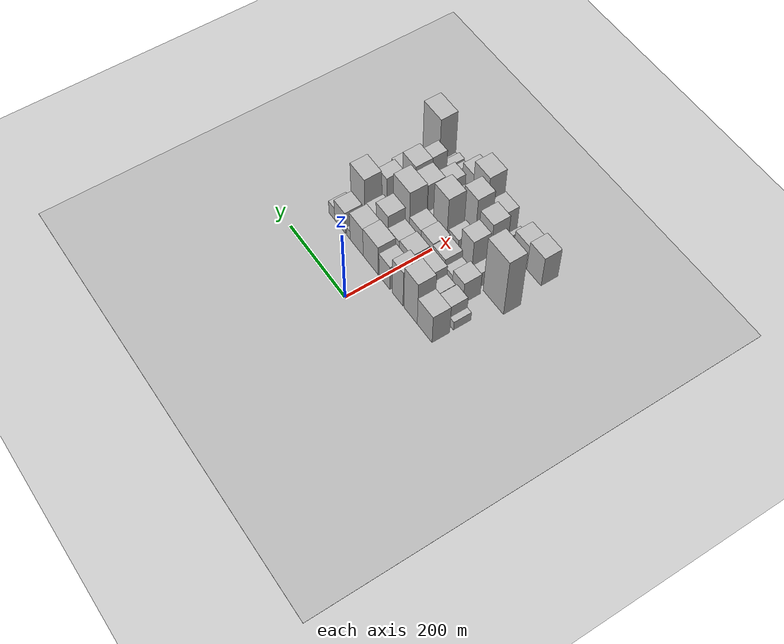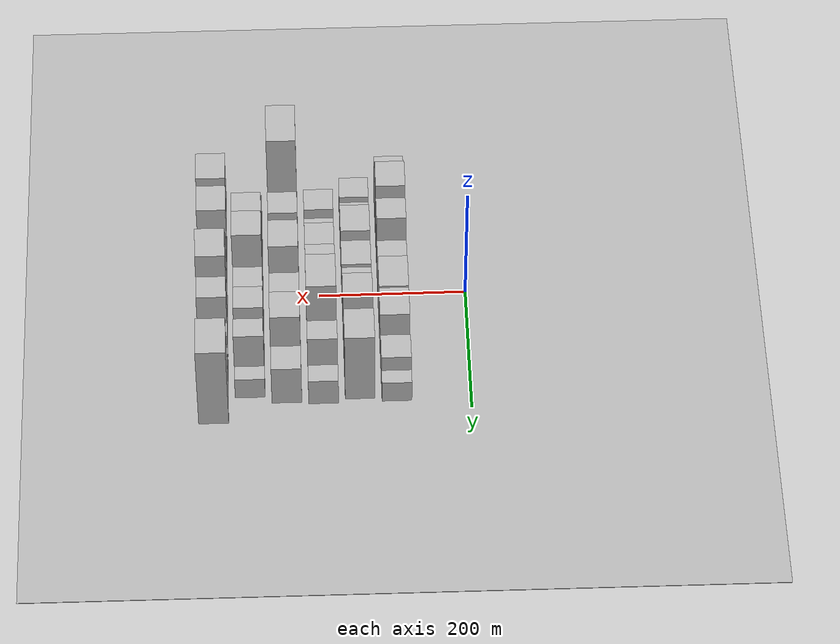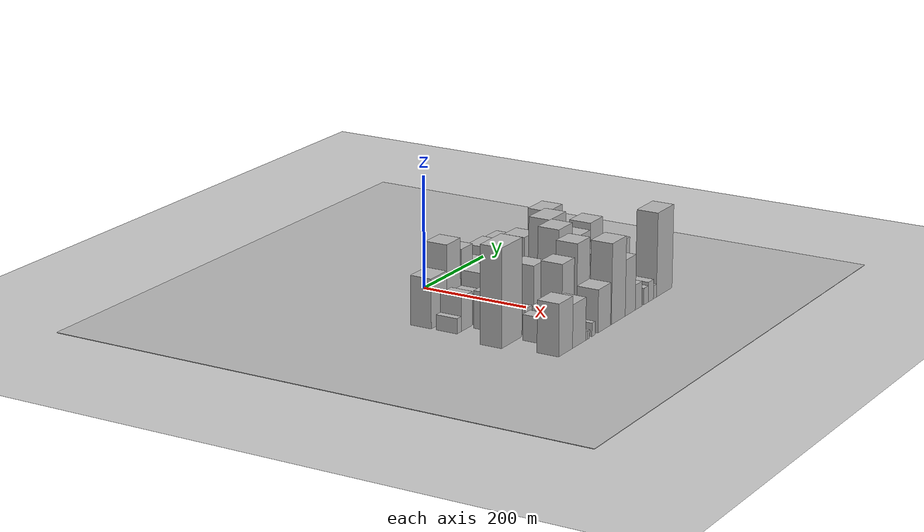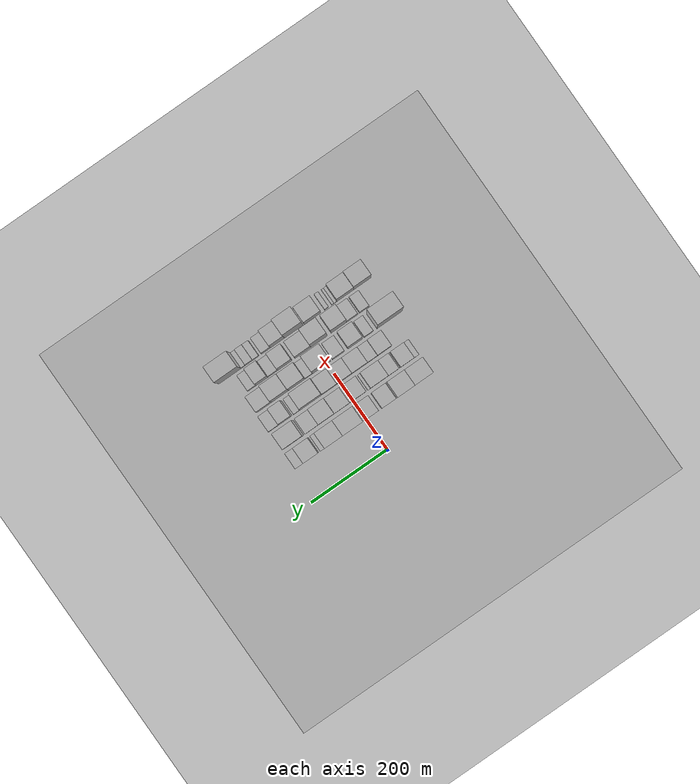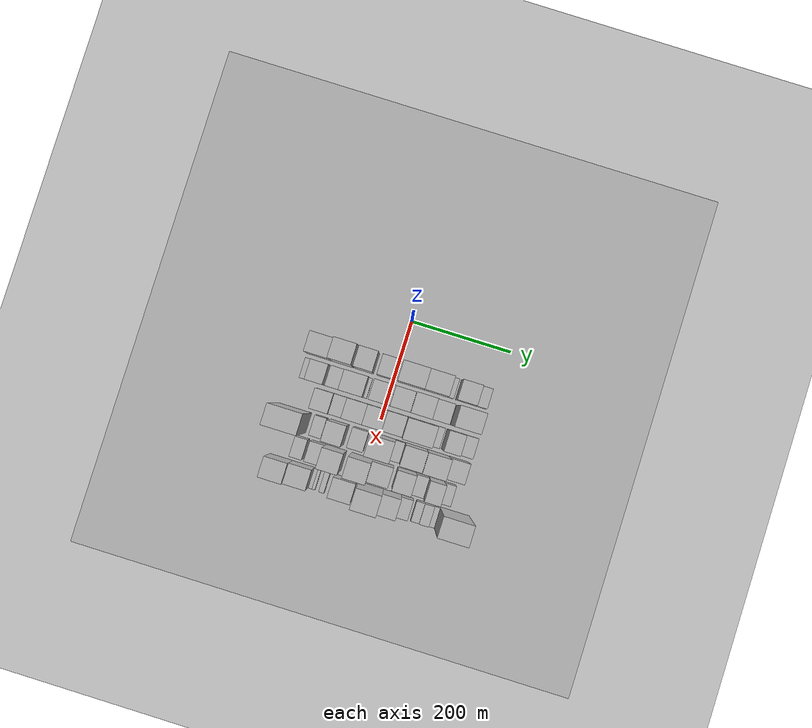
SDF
<sdf version="1.6">
 <world name="default">
  <include><name>ground_plane_1</name><uri>model://HANNAS_ground_plane</uri></include>
  <include>
   <name>ground_plane_2</name>
   <uri>model://HANNAS_ground_plane</uri>
   <pose>100 0 0  0 0 0</pose>
  </include>
  <model name="building_21">
   <static>1</static>
   <pose>100.0000 -149.5675 0 0.000000 0.000000 0.000000</pose>
   <link name="link">
    <pose>0 0 43.50 0 0 0</pose>
    <collision name="collision"><geometry><box><size>40.0000 49.0637 87.0000</size></box></geometry></collision>
    <visual name="visual">
     <cast_shadows>0</cast_shadows>
     <geometry><box><size>40.0000 49.0637 87.0000</size></box></geometry>
     <material>
      <script>
       <uri>model://HANNAS_wall/materials/scripts</uri>
       <uri>model://HANNAS_wall/materials/textures</uri>
       <name>vrc/HANNAS_wall</name>
      </script>
     </material>
    </visual>
   </link>
  </model>
  <model name="building_22">
   <static>1</static>
   <pose>100.0000 -102.7013 0 0.000000 0.000000 0.000000</pose>
   <link name="link">
    <pose>0 0 66.00 0 0 0</pose>
    <collision name="collision"><geometry><box><size>40.0000 44.6686 132.0000</size></box></geometry></collision>
    <visual name="visual">
     <cast_shadows>0</cast_shadows>
     <geometry><box><size>40.0000 44.6686 132.0000</size></box></geometry>
     <material>
      <script>
       <uri>model://HANNAS_wall/materials/scripts</uri>
       <uri>model://HANNAS_wall/materials/textures</uri>
       <name>vrc/HANNAS_wall</name>
      </script>
     </material>
    </visual>
   </link>
  </model>
  <model name="building_23">
   <static>1</static>
   <pose>100.0000 -58.9814 0 0.000000 0.000000 0.000000</pose>
   <link name="link">
    <pose>0 0 55.50 0 0 0</pose>
    <collision name="collision"><geometry><box><size>40.0000 36.7712 111.0000</size></box></geometry></collision>
    <visual name="visual">
     <cast_shadows>0</cast_shadows>
     <geometry><box><size>40.0000 36.7712 111.0000</size></box></geometry>
     <material>
      <script>
       <uri>model://HANNAS_wall/materials/scripts</uri>
       <uri>model://HANNAS_wall/materials/textures</uri>
       <name>vrc/HANNAS_wall</name>
      </script>
     </material>
    </visual>
   </link>
  </model>
  <model name="building_24">
   <static>1</static>
   <pose>100.0000 -13.7716 0 0.000000 0.000000 0.000000</pose>
   <link name="link">
    <pose>0 0 37.50 0 0 0</pose>
    <collision name="collision"><geometry><box><size>40.0000 37.6485 75.0000</size></box></geometry></collision>
    <visual name="visual">
     <cast_shadows>0</cast_shadows>
     <geometry><box><size>40.0000 37.6485 75.0000</size></box></geometry>
     <material>
      <script>
       <uri>model://HANNAS_wall/materials/scripts</uri>
       <uri>model://HANNAS_wall/materials/textures</uri>
       <name>vrc/HANNAS_wall</name>
      </script>
     </material>
    </visual>
   </link>
  </model>
  <model name="building_25">
   <static>1</static>
   <pose>100.0000 34.4187 0 0.000000 0.000000 0.000000</pose>
   <link name="link">
    <pose>0 0 45.00 0 0 0</pose>
    <collision name="collision"><geometry><box><size>40.0000 52.7319 90.0000</size></box></geometry></collision>
    <visual name="visual">
     <cast_shadows>0</cast_shadows>
     <geometry><box><size>40.0000 52.7319 90.0000</size></box></geometry>
     <material>
      <script>
       <uri>model://HANNAS_wall/materials/scripts</uri>
       <uri>model://HANNAS_wall/materials/textures</uri>
       <name>vrc/HANNAS_wall</name>
      </script>
     </material>
    </visual>
   </link>
  </model>
  <model name="building_26">
   <static>1</static>
   <pose>100.0000 84.2863 0 0.000000 0.000000 0.000000</pose>
   <link name="link">
    <pose>0 0 43.50 0 0 0</pose>
    <collision name="collision"><geometry><box><size>40.0000 47.0033 87.0000</size></box></geometry></collision>
    <visual name="visual">
     <cast_shadows>0</cast_shadows>
     <geometry><box><size>40.0000 47.0033 87.0000</size></box></geometry>
     <material>
      <script>
       <uri>model://HANNAS_wall/materials/scripts</uri>
       <uri>model://HANNAS_wall/materials/textures</uri>
       <name>vrc/HANNAS_wall</name>
      </script>
     </material>
    </visual>
   </link>
  </model>
  <model name="building_27">
   <static>1</static>
   <pose>100.0000 113.9015 0 0.000000 0.000000 0.000000</pose>
   <link name="link">
    <pose>0 0 13.50 0 0 0</pose>
    <collision name="collision"><geometry><box><size>40.0000 12.2271 27.0000</size></box></geometry></collision>
    <visual name="visual">
     <cast_shadows>0</cast_shadows>
     <geometry><box><size>40.0000 12.2271 27.0000</size></box></geometry>
     <material>
      <script>
       <uri>model://HANNAS_wall/materials/scripts</uri>
       <uri>model://HANNAS_wall/materials/textures</uri>
       <name>vrc/HANNAS_wall</name>
      </script>
     </material>
    </visual>
   </link>
  </model>
  <model name="building_28">
   <static>1</static>
   <pose>100.0000 144.5365 0 0.000000 0.000000 0.000000</pose>
   <link name="link">
    <pose>0 0 33.00 0 0 0</pose>
    <collision name="collision"><geometry><box><size>40.0000 39.0430 66.0000</size></box></geometry></collision>
    <visual name="visual">
     <cast_shadows>0</cast_shadows>
     <geometry><box><size>40.0000 39.0430 66.0000</size></box></geometry>
     <material>
      <script>
       <uri>model://HANNAS_wall/materials/scripts</uri>
       <uri>model://HANNAS_wall/materials/textures</uri>
       <name>vrc/HANNAS_wall</name>
      </script>
     </material>
    </visual>
   </link>
  </model>
  <model name="building_29">
   <static>1</static>
   <pose>100.0000 174.8600 0 0.000000 0.000000 0.000000</pose>
   <link name="link">
    <pose>0 0 19.50 0 0 0</pose>
    <collision name="collision"><geometry><box><size>40.0000 21.6038 39.0000</size></box></geometry></collision>
    <visual name="visual">
     <cast_shadows>0</cast_shadows>
     <geometry><box><size>40.0000 21.6038 39.0000</size></box></geometry>
     <material>
      <script>
       <uri>model://HANNAS_wall/materials/scripts</uri>
       <uri>model://HANNAS_wall/materials/textures</uri>
       <name>vrc/HANNAS_wall</name>
      </script>
     </material>
    </visual>
   </link>
  </model>
  <model name="building_64">
   <static>1</static>
   <pose>149.0000 -166.6785 0 0.000000 0.000000 0.000000</pose>
   <link name="link">
    <pose>0 0 13.50 0 0 0</pose>
    <collision name="collision"><geometry><box><size>40.0000 13.3885 27.0000</size></box></geometry></collision>
    <visual name="visual">
     <cast_shadows>0</cast_shadows>
     <geometry><box><size>40.0000 13.3885 27.0000</size></box></geometry>
     <material>
      <script>
       <uri>model://HANNAS_wall/materials/scripts</uri>
       <uri>model://HANNAS_wall/materials/textures</uri>
       <name>vrc/HANNAS_wall</name>
      </script>
     </material>
    </visual>
   </link>
  </model>
  <model name="building_65">
   <static>1</static>
   <pose>149.0000 -142.2231 0 0.000000 0.000000 0.000000</pose>
   <link name="link">
    <pose>0 0 30.00 0 0 0</pose>
    <collision name="collision"><geometry><box><size>40.0000 35.5222 60.0000</size></box></geometry></collision>
    <visual name="visual">
     <cast_shadows>0</cast_shadows>
     <geometry><box><size>40.0000 35.5222 60.0000</size></box></geometry>
     <material>
      <script>
       <uri>model://HANNAS_wall/materials/scripts</uri>
       <uri>model://HANNAS_wall/materials/textures</uri>
       <name>vrc/HANNAS_wall</name>
      </script>
     </material>
    </visual>
   </link>
  </model>
  <model name="building_66">
   <static>1</static>
   <pose>149.0000 -106.3887 0 0.000000 0.000000 0.000000</pose>
   <link name="link">
    <pose>0 0 27.00 0 0 0</pose>
    <collision name="collision"><geometry><box><size>40.0000 28.1467 54.0000</size></box></geometry></collision>
    <visual name="visual">
     <cast_shadows>0</cast_shadows>
     <geometry><box><size>40.0000 28.1467 54.0000</size></box></geometry>
     <material>
      <script>
       <uri>model://HANNAS_wall/materials/scripts</uri>
       <uri>model://HANNAS_wall/materials/textures</uri>
       <name>vrc/HANNAS_wall</name>
      </script>
     </material>
    </visual>
   </link>
  </model>
  <model name="building_67">
   <static>1</static>
   <pose>149.0000 -69.0412 0 0.000000 0.000000 0.000000</pose>
   <link name="link">
    <pose>0 0 40.50 0 0 0</pose>
    <collision name="collision"><geometry><box><size>40.0000 46.5482 81.0000</size></box></geometry></collision>
    <visual name="visual">
     <cast_shadows>0</cast_shadows>
     <geometry><box><size>40.0000 46.5482 81.0000</size></box></geometry>
     <material>
      <script>
       <uri>model://HANNAS_wall/materials/scripts</uri>
       <uri>model://HANNAS_wall/materials/textures</uri>
       <name>vrc/HANNAS_wall</name>
      </script>
     </material>
    </visual>
   </link>
  </model>
  <model name="building_68">
   <static>1</static>
   <pose>149.0000 -42.4234 0 0.000000 0.000000 0.000000</pose>
   <link name="link">
    <pose>0 0 7.50 0 0 0</pose>
    <collision name="collision"><geometry><box><size>40.0000 6.6874 15.0000</size></box></geometry></collision>
    <visual name="visual">
     <cast_shadows>0</cast_shadows>
     <geometry><box><size>40.0000 6.6874 15.0000</size></box></geometry>
     <material>
      <script>
       <uri>model://HANNAS_wall/materials/scripts</uri>
       <uri>model://HANNAS_wall/materials/textures</uri>
       <name>vrc/HANNAS_wall</name>
      </script>
     </material>
    </visual>
   </link>
  </model>
  <model name="building_69">
   <static>1</static>
   <pose>149.0000 -12.8317 0 0.000000 0.000000 0.000000</pose>
   <link name="link">
    <pose>0 0 37.50 0 0 0</pose>
    <collision name="collision"><geometry><box><size>40.0000 42.4959 75.0000</size></box></geometry></collision>
    <visual name="visual">
     <cast_shadows>0</cast_shadows>
     <geometry><box><size>40.0000 42.4959 75.0000</size></box></geometry>
     <material>
      <script>
       <uri>model://HANNAS_wall/materials/scripts</uri>
       <uri>model://HANNAS_wall/materials/textures</uri>
       <name>vrc/HANNAS_wall</name>
      </script>
     </material>
    </visual>
   </link>
  </model>
  <model name="building_70">
   <static>1</static>
   <pose>149.0000 28.4227 0 0.000000 0.000000 0.000000</pose>
   <link name="link">
    <pose>0 0 34.50 0 0 0</pose>
    <collision name="collision"><geometry><box><size>40.0000 40.0129 69.0000</size></box></geometry></collision>
    <visual name="visual">
     <cast_shadows>0</cast_shadows>
     <geometry><box><size>40.0000 40.0129 69.0000</size></box></geometry>
     <material>
      <script>
       <uri>model://HANNAS_wall/materials/scripts</uri>
       <uri>model://HANNAS_wall/materials/textures</uri>
       <name>vrc/HANNAS_wall</name>
      </script>
     </material>
    </visual>
   </link>
  </model>
  <model name="building_71">
   <static>1</static>
   <pose>149.0000 69.0347 0 0.000000 0.000000 0.000000</pose>
   <link name="link">
    <pose>0 0 52.50 0 0 0</pose>
    <collision name="collision"><geometry><box><size>40.0000 41.2111 105.0000</size></box></geometry></collision>
    <visual name="visual">
     <cast_shadows>0</cast_shadows>
     <geometry><box><size>40.0000 41.2111 105.0000</size></box></geometry>
     <material>
      <script>
       <uri>model://HANNAS_wall/materials/scripts</uri>
       <uri>model://HANNAS_wall/materials/textures</uri>
       <name>vrc/HANNAS_wall</name>
      </script>
     </material>
    </visual>
   </link>
  </model>
  <model name="building_72">
   <static>1</static>
   <pose>149.0000 107.3769 0 0.000000 0.000000 0.000000</pose>
   <link name="link">
    <pose>0 0 31.50 0 0 0</pose>
    <collision name="collision"><geometry><box><size>40.0000 35.4734 63.0000</size></box></geometry></collision>
    <visual name="visual">
     <cast_shadows>0</cast_shadows>
     <geometry><box><size>40.0000 35.4734 63.0000</size></box></geometry>
     <material>
      <script>
       <uri>model://HANNAS_wall/materials/scripts</uri>
       <uri>model://HANNAS_wall/materials/textures</uri>
       <name>vrc/HANNAS_wall</name>
      </script>
     </material>
    </visual>
   </link>
  </model>
  <model name="building_73">
   <static>1</static>
   <pose>149.0000 155.2507 0 0.000000 0.000000 0.000000</pose>
   <link name="link">
    <pose>0 0 64.50 0 0 0</pose>
    <collision name="collision"><geometry><box><size>40.0000 50.2742 129.0000</size></box></geometry></collision>
    <visual name="visual">
     <cast_shadows>0</cast_shadows>
     <geometry><box><size>40.0000 50.2742 129.0000</size></box></geometry>
     <material>
      <script>
       <uri>model://HANNAS_wall/materials/scripts</uri>
       <uri>model://HANNAS_wall/materials/textures</uri>
       <name>vrc/HANNAS_wall</name>
      </script>
     </material>
    </visual>
   </link>
  </model>
  <model name="building_116">
   <static>1</static>
   <pose>198.0000 -116.7521 0 0.000000 0.000000 0.000000</pose>
   <link name="link">
    <pose>0 0 33.00 0 0 0</pose>
    <collision name="collision"><geometry><box><size>40.0000 36.6496 66.0000</size></box></geometry></collision>
    <visual name="visual">
     <cast_shadows>0</cast_shadows>
     <geometry><box><size>40.0000 36.6496 66.0000</size></box></geometry>
     <material>
      <script>
       <uri>model://HANNAS_wall/materials/scripts</uri>
       <uri>model://HANNAS_wall/materials/textures</uri>
       <name>vrc/HANNAS_wall</name>
      </script>
     </material>
    </visual>
   </link>
  </model>
  <model name="building_117">
   <static>1</static>
   <pose>198.0000 -85.3803 0 0.000000 0.000000 0.000000</pose>
   <link name="link">
    <pose>0 0 24.00 0 0 0</pose>
    <collision name="collision"><geometry><box><size>40.0000 26.0939 48.0000</size></box></geometry></collision>
    <visual name="visual">
     <cast_shadows>0</cast_shadows>
     <geometry><box><size>40.0000 26.0939 48.0000</size></box></geometry>
     <material>
      <script>
       <uri>model://HANNAS_wall/materials/scripts</uri>
       <uri>model://HANNAS_wall/materials/textures</uri>
       <name>vrc/HANNAS_wall</name>
      </script>
     </material>
    </visual>
   </link>
  </model>
  <model name="building_118">
   <static>1</static>
   <pose>198.0000 -51.9187 0 0.000000 0.000000 0.000000</pose>
   <link name="link">
    <pose>0 0 34.50 0 0 0</pose>
    <collision name="collision"><geometry><box><size>40.0000 40.8294 69.0000</size></box></geometry></collision>
    <visual name="visual">
     <cast_shadows>0</cast_shadows>
     <geometry><box><size>40.0000 40.8294 69.0000</size></box></geometry>
     <material>
      <script>
       <uri>model://HANNAS_wall/materials/scripts</uri>
       <uri>model://HANNAS_wall/materials/textures</uri>
       <name>vrc/HANNAS_wall</name>
      </script>
     </material>
    </visual>
   </link>
  </model>
  <model name="building_119">
   <static>1</static>
   <pose>198.0000 -11.8491 0 0.000000 0.000000 0.000000</pose>
   <link name="link">
    <pose>0 0 36.00 0 0 0</pose>
    <collision name="collision"><geometry><box><size>40.0000 39.3098 72.0000</size></box></geometry></collision>
    <visual name="visual">
     <cast_shadows>0</cast_shadows>
     <geometry><box><size>40.0000 39.3098 72.0000</size></box></geometry>
     <material>
      <script>
       <uri>model://HANNAS_wall/materials/scripts</uri>
       <uri>model://HANNAS_wall/materials/textures</uri>
       <name>vrc/HANNAS_wall</name>
      </script>
     </material>
    </visual>
   </link>
  </model>
  <model name="building_120">
   <static>1</static>
   <pose>198.0000 27.4465 0 0.000000 0.000000 0.000000</pose>
   <link name="link">
    <pose>0 0 34.50 0 0 0</pose>
    <collision name="collision"><geometry><box><size>40.0000 39.2813 69.0000</size></box></geometry></collision>
    <visual name="visual">
     <cast_shadows>0</cast_shadows>
     <geometry><box><size>40.0000 39.2813 69.0000</size></box></geometry>
     <material>
      <script>
       <uri>model://HANNAS_wall/materials/scripts</uri>
       <uri>model://HANNAS_wall/materials/textures</uri>
       <name>vrc/HANNAS_wall</name>
      </script>
     </material>
    </visual>
   </link>
  </model>
  <model name="building_121">
   <static>1</static>
   <pose>198.0000 75.0837 0 0.000000 0.000000 0.000000</pose>
   <link name="link">
    <pose>0 0 72.00 0 0 0</pose>
    <collision name="collision"><geometry><box><size>40.0000 55.9932 144.0000</size></box></geometry></collision>
    <visual name="visual">
     <cast_shadows>0</cast_shadows>
     <geometry><box><size>40.0000 55.9932 144.0000</size></box></geometry>
     <material>
      <script>
       <uri>model://HANNAS_wall/materials/scripts</uri>
       <uri>model://HANNAS_wall/materials/textures</uri>
       <name>vrc/HANNAS_wall</name>
      </script>
     </material>
    </visual>
   </link>
  </model>
  <model name="building_122">
   <static>1</static>
   <pose>198.0000 112.4177 0 0.000000 0.000000 0.000000</pose>
   <link name="link">
    <pose>0 0 18.00 0 0 0</pose>
    <collision name="collision"><geometry><box><size>40.0000 18.6747 36.0000</size></box></geometry></collision>
    <visual name="visual">
     <cast_shadows>0</cast_shadows>
     <geometry><box><size>40.0000 18.6747 36.0000</size></box></geometry>
     <material>
      <script>
       <uri>model://HANNAS_wall/materials/scripts</uri>
       <uri>model://HANNAS_wall/materials/textures</uri>
       <name>vrc/HANNAS_wall</name>
      </script>
     </material>
    </visual>
   </link>
  </model>
  <model name="building_123">
   <static>1</static>
   <pose>198.0000 142.8304 0 0.000000 0.000000 0.000000</pose>
   <link name="link">
    <pose>0 0 51.00 0 0 0</pose>
    <collision name="collision"><geometry><box><size>40.0000 32.1506 102.0000</size></box></geometry></collision>
    <visual name="visual">
     <cast_shadows>0</cast_shadows>
     <geometry><box><size>40.0000 32.1506 102.0000</size></box></geometry>
     <material>
      <script>
       <uri>model://HANNAS_wall/materials/scripts</uri>
       <uri>model://HANNAS_wall/materials/textures</uri>
       <name>vrc/HANNAS_wall</name>
      </script>
     </material>
    </visual>
   </link>
  </model>
  <model name="building_124">
   <static>1</static>
   <pose>198.0000 172.9054 0 0.000000 0.000000 0.000000</pose>
   <link name="link">
    <pose>0 0 24.00 0 0 0</pose>
    <collision name="collision"><geometry><box><size>40.0000 27.9995 48.0000</size></box></geometry></collision>
    <visual name="visual">
     <cast_shadows>0</cast_shadows>
     <geometry><box><size>40.0000 27.9995 48.0000</size></box></geometry>
     <material>
      <script>
       <uri>model://HANNAS_wall/materials/scripts</uri>
       <uri>model://HANNAS_wall/materials/textures</uri>
       <name>vrc/HANNAS_wall</name>
      </script>
     </material>
    </visual>
   </link>
  </model>
  <model name="building_167">
   <static>1</static>
   <pose>247.0000 -164.4847 0 0.000000 0.000000 0.000000</pose>
   <link name="link">
    <pose>0 0 85.50 0 0 0</pose>
    <collision name="collision"><geometry><box><size>40.0000 65.6905 171.0000</size></box></geometry></collision>
    <visual name="visual">
     <cast_shadows>0</cast_shadows>
     <geometry><box><size>40.0000 65.6905 171.0000</size></box></geometry>
     <material>
      <script>
       <uri>model://HANNAS_wall/materials/scripts</uri>
       <uri>model://HANNAS_wall/materials/textures</uri>
       <name>vrc/HANNAS_wall</name>
      </script>
     </material>
    </visual>
   </link>
  </model>
  <model name="building_168">
   <static>1</static>
   <pose>247.0000 -109.7556 0 0.000000 0.000000 0.000000</pose>
   <link name="link">
    <pose>0 0 22.50 0 0 0</pose>
    <collision name="collision"><geometry><box><size>40.0000 23.7678 45.0000</size></box></geometry></collision>
    <visual name="visual">
     <cast_shadows>0</cast_shadows>
     <geometry><box><size>40.0000 23.7678 45.0000</size></box></geometry>
     <material>
      <script>
       <uri>model://HANNAS_wall/materials/scripts</uri>
       <uri>model://HANNAS_wall/materials/textures</uri>
       <name>vrc/HANNAS_wall</name>
      </script>
     </material>
    </visual>
   </link>
  </model>
  <model name="building_169">
   <static>1</static>
   <pose>247.0000 -73.9594 0 0.000000 0.000000 0.000000</pose>
   <link name="link">
    <pose>0 0 55.50 0 0 0</pose>
    <collision name="collision"><geometry><box><size>40.0000 37.8246 111.0000</size></box></geometry></collision>
    <visual name="visual">
     <cast_shadows>0</cast_shadows>
     <geometry><box><size>40.0000 37.8246 111.0000</size></box></geometry>
     <material>
      <script>
       <uri>model://HANNAS_wall/materials/scripts</uri>
       <uri>model://HANNAS_wall/materials/textures</uri>
       <name>vrc/HANNAS_wall</name>
      </script>
     </material>
    </visual>
   </link>
  </model>
  <model name="building_170">
   <static>1</static>
   <pose>247.0000 -30.2576 0 0.000000 0.000000 0.000000</pose>
   <link name="link">
    <pose>0 0 31.50 0 0 0</pose>
    <collision name="collision"><geometry><box><size>40.0000 31.5790 63.0000</size></box></geometry></collision>
    <visual name="visual">
     <cast_shadows>0</cast_shadows>
     <geometry><box><size>40.0000 31.5790 63.0000</size></box></geometry>
     <material>
      <script>
       <uri>model://HANNAS_wall/materials/scripts</uri>
       <uri>model://HANNAS_wall/materials/textures</uri>
       <name>vrc/HANNAS_wall</name>
      </script>
     </material>
    </visual>
   </link>
  </model>
  <model name="building_171">
   <static>1</static>
   <pose>247.0000 13.9634 0 0.000000 0.000000 0.000000</pose>
   <link name="link">
    <pose>0 0 75.00 0 0 0</pose>
    <collision name="collision"><geometry><box><size>40.0000 46.8631 150.0000</size></box></geometry></collision>
    <visual name="visual">
     <cast_shadows>0</cast_shadows>
     <geometry><box><size>40.0000 46.8631 150.0000</size></box></geometry>
     <material>
      <script>
       <uri>model://HANNAS_wall/materials/scripts</uri>
       <uri>model://HANNAS_wall/materials/textures</uri>
       <name>vrc/HANNAS_wall</name>
      </script>
     </material>
    </visual>
   </link>
  </model>
  <model name="building_172">
   <static>1</static>
   <pose>247.0000 47.4174 0 0.000000 0.000000 0.000000</pose>
   <link name="link">
    <pose>0 0 19.50 0 0 0</pose>
    <collision name="collision"><geometry><box><size>40.0000 20.0448 39.0000</size></box></geometry></collision>
    <visual name="visual">
     <cast_shadows>0</cast_shadows>
     <geometry><box><size>40.0000 20.0448 39.0000</size></box></geometry>
     <material>
      <script>
       <uri>model://HANNAS_wall/materials/scripts</uri>
       <uri>model://HANNAS_wall/materials/textures</uri>
       <name>vrc/HANNAS_wall</name>
      </script>
     </material>
    </visual>
   </link>
  </model>
  <model name="building_173">
   <static>1</static>
   <pose>247.0000 78.8623 0 0.000000 0.000000 0.000000</pose>
   <link name="link">
    <pose>0 0 60.00 0 0 0</pose>
    <collision name="collision"><geometry><box><size>40.0000 42.8450 120.0000</size></box></geometry></collision>
    <visual name="visual">
     <cast_shadows>0</cast_shadows>
     <geometry><box><size>40.0000 42.8450 120.0000</size></box></geometry>
     <material>
      <script>
       <uri>model://HANNAS_wall/materials/scripts</uri>
       <uri>model://HANNAS_wall/materials/textures</uri>
       <name>vrc/HANNAS_wall</name>
      </script>
     </material>
    </visual>
   </link>
  </model>
  <model name="building_174">
   <static>1</static>
   <pose>247.0000 122.4148 0 0.000000 0.000000 0.000000</pose>
   <link name="link">
    <pose>0 0 66.00 0 0 0</pose>
    <collision name="collision"><geometry><box><size>40.0000 44.2601 132.0000</size></box></geometry></collision>
    <visual name="visual">
     <cast_shadows>0</cast_shadows>
     <geometry><box><size>40.0000 44.2601 132.0000</size></box></geometry>
     <material>
      <script>
       <uri>model://HANNAS_wall/materials/scripts</uri>
       <uri>model://HANNAS_wall/materials/textures</uri>
       <name>vrc/HANNAS_wall</name>
      </script>
     </material>
    </visual>
   </link>
  </model>
  <model name="building_175">
   <static>1</static>
   <pose>247.0000 164.3074 0 0.000000 0.000000 0.000000</pose>
   <link name="link">
    <pose>0 0 36.00 0 0 0</pose>
    <collision name="collision"><geometry><box><size>40.0000 39.5252 72.0000</size></box></geometry></collision>
    <visual name="visual">
     <cast_shadows>0</cast_shadows>
     <geometry><box><size>40.0000 39.5252 72.0000</size></box></geometry>
     <material>
      <script>
       <uri>model://HANNAS_wall/materials/scripts</uri>
       <uri>model://HANNAS_wall/materials/textures</uri>
       <name>vrc/HANNAS_wall</name>
      </script>
     </material>
    </visual>
   </link>
  </model>
  <model name="building_217">
   <static>1</static>
   <pose>296.0000 -132.5290 0 0.000000 0.000000 0.000000</pose>
   <link name="link">
    <pose>0 0 22.50 0 0 0</pose>
    <collision name="collision"><geometry><box><size>40.0000 24.9660 45.0000</size></box></geometry></collision>
    <visual name="visual">
     <cast_shadows>0</cast_shadows>
     <geometry><box><size>40.0000 24.9660 45.0000</size></box></geometry>
     <material>
      <script>
       <uri>model://HANNAS_wall/materials/scripts</uri>
       <uri>model://HANNAS_wall/materials/textures</uri>
       <name>vrc/HANNAS_wall</name>
      </script>
     </material>
    </visual>
   </link>
  </model>
  <model name="building_218">
   <static>1</static>
   <pose>296.0000 -100.4131 0 0.000000 0.000000 0.000000</pose>
   <link name="link">
    <pose>0 0 25.50 0 0 0</pose>
    <collision name="collision"><geometry><box><size>40.0000 29.2658 51.0000</size></box></geometry></collision>
    <visual name="visual">
     <cast_shadows>0</cast_shadows>
     <geometry><box><size>40.0000 29.2658 51.0000</size></box></geometry>
     <material>
      <script>
       <uri>model://HANNAS_wall/materials/scripts</uri>
       <uri>model://HANNAS_wall/materials/textures</uri>
       <name>vrc/HANNAS_wall</name>
      </script>
     </material>
    </visual>
   </link>
  </model>
  <model name="building_219">
   <static>1</static>
   <pose>296.0000 -65.3778 0 0.000000 0.000000 0.000000</pose>
   <link name="link">
    <pose>0 0 60.00 0 0 0</pose>
    <collision name="collision"><geometry><box><size>40.0000 40.8048 120.0000</size></box></geometry></collision>
    <visual name="visual">
     <cast_shadows>0</cast_shadows>
     <geometry><box><size>40.0000 40.8048 120.0000</size></box></geometry>
     <material>
      <script>
       <uri>model://HANNAS_wall/materials/scripts</uri>
       <uri>model://HANNAS_wall/materials/textures</uri>
       <name>vrc/HANNAS_wall</name>
      </script>
     </material>
    </visual>
   </link>
  </model>
  <model name="building_220">
   <static>1</static>
   <pose>296.0000 -13.3894 0 0.000000 0.000000 0.000000</pose>
   <link name="link">
    <pose>0 0 70.50 0 0 0</pose>
    <collision name="collision"><geometry><box><size>40.0000 43.1721 141.0000</size></box></geometry></collision>
    <visual name="visual">
     <cast_shadows>0</cast_shadows>
     <geometry><box><size>40.0000 43.1721 141.0000</size></box></geometry>
     <material>
      <script>
       <uri>model://HANNAS_wall/materials/scripts</uri>
       <uri>model://HANNAS_wall/materials/textures</uri>
       <name>vrc/HANNAS_wall</name>
      </script>
     </material>
    </visual>
   </link>
  </model>
  <model name="building_221">
   <static>1</static>
   <pose>296.0000 28.9363 0 0.000000 0.000000 0.000000</pose>
   <link name="link">
    <pose>0 0 37.50 0 0 0</pose>
    <collision name="collision"><geometry><box><size>40.0000 41.4793 75.0000</size></box></geometry></collision>
    <visual name="visual">
     <cast_shadows>0</cast_shadows>
     <geometry><box><size>40.0000 41.4793 75.0000</size></box></geometry>
     <material>
      <script>
       <uri>model://HANNAS_wall/materials/scripts</uri>
       <uri>model://HANNAS_wall/materials/textures</uri>
       <name>vrc/HANNAS_wall</name>
      </script>
     </material>
    </visual>
   </link>
  </model>
  <model name="building_222">
   <static>1</static>
   <pose>296.0000 76.1615 0 0.000000 0.000000 0.000000</pose>
   <link name="link">
    <pose>0 0 46.50 0 0 0</pose>
    <collision name="collision"><geometry><box><size>40.0000 36.9712 93.0000</size></box></geometry></collision>
    <visual name="visual">
     <cast_shadows>0</cast_shadows>
     <geometry><box><size>40.0000 36.9712 93.0000</size></box></geometry>
     <material>
      <script>
       <uri>model://HANNAS_wall/materials/scripts</uri>
       <uri>model://HANNAS_wall/materials/textures</uri>
       <name>vrc/HANNAS_wall</name>
      </script>
     </material>
    </visual>
   </link>
  </model>
  <model name="building_223">
   <static>1</static>
   <pose>296.0000 107.4443 0 0.000000 0.000000 0.000000</pose>
   <link name="link">
    <pose>0 0 22.50 0 0 0</pose>
    <collision name="collision"><geometry><box><size>40.0000 25.5943 45.0000</size></box></geometry></collision>
    <visual name="visual">
     <cast_shadows>0</cast_shadows>
     <geometry><box><size>40.0000 25.5943 45.0000</size></box></geometry>
     <material>
      <script>
       <uri>model://HANNAS_wall/materials/scripts</uri>
       <uri>model://HANNAS_wall/materials/textures</uri>
       <name>vrc/HANNAS_wall</name>
      </script>
     </material>
    </visual>
   </link>
  </model>
  <model name="building_224">
   <static>1</static>
   <pose>296.0000 135.6301 0 0.000000 0.000000 0.000000</pose>
   <link name="link">
    <pose>0 0 51.00 0 0 0</pose>
    <collision name="collision"><geometry><box><size>40.0000 30.7774 102.0000</size></box></geometry></collision>
    <visual name="visual">
     <cast_shadows>0</cast_shadows>
     <geometry><box><size>40.0000 30.7774 102.0000</size></box></geometry>
     <material>
      <script>
       <uri>model://HANNAS_wall/materials/scripts</uri>
       <uri>model://HANNAS_wall/materials/textures</uri>
       <name>vrc/HANNAS_wall</name>
      </script>
     </material>
    </visual>
   </link>
  </model>
  <model name="building_225">
   <static>1</static>
   <pose>296.0000 162.3607 0 0.000000 0.000000 0.000000</pose>
   <link name="link">
    <pose>0 0 19.50 0 0 0</pose>
    <collision name="collision"><geometry><box><size>40.0000 22.6836 39.0000</size></box></geometry></collision>
    <visual name="visual">
     <cast_shadows>0</cast_shadows>
     <geometry><box><size>40.0000 22.6836 39.0000</size></box></geometry>
     <material>
      <script>
       <uri>model://HANNAS_wall/materials/scripts</uri>
       <uri>model://HANNAS_wall/materials/textures</uri>
       <name>vrc/HANNAS_wall</name>
      </script>
     </material>
    </visual>
   </link>
  </model>
  <model name="building_267">
   <static>1</static>
   <pose>345.0000 -161.5569 0 0.000000 0.000000 0.000000</pose>
   <link name="link">
    <pose>0 0 45.00 0 0 0</pose>
    <collision name="collision"><geometry><box><size>40.0000 45.8530 90.0000</size></box></geometry></collision>
    <visual name="visual">
     <cast_shadows>0</cast_shadows>
     <geometry><box><size>40.0000 45.8530 90.0000</size></box></geometry>
     <material>
      <script>
       <uri>model://HANNAS_wall/materials/scripts</uri>
       <uri>model://HANNAS_wall/materials/textures</uri>
       <name>vrc/HANNAS_wall</name>
      </script>
     </material>
    </visual>
   </link>
  </model>
  <model name="building_268">
   <static>1</static>
   <pose>345.0000 -116.3390 0 0.000000 0.000000 0.000000</pose>
   <link name="link">
    <pose>0 0 37.50 0 0 0</pose>
    <collision name="collision"><geometry><box><size>40.0000 44.5828 75.0000</size></box></geometry></collision>
    <visual name="visual">
     <cast_shadows>0</cast_shadows>
     <geometry><box><size>40.0000 44.5828 75.0000</size></box></geometry>
     <material>
      <script>
       <uri>model://HANNAS_wall/materials/scripts</uri>
       <uri>model://HANNAS_wall/materials/textures</uri>
       <name>vrc/HANNAS_wall</name>
      </script>
     </material>
    </visual>
   </link>
  </model>
  <model name="building_269">
   <static>1</static>
   <pose>345.0000 -90.4341 0 0.000000 0.000000 0.000000</pose>
   <link name="link">
    <pose>0 0 7.50 0 0 0</pose>
    <collision name="collision"><geometry><box><size>40.0000 7.2270 15.0000</size></box></geometry></collision>
    <visual name="visual">
     <cast_shadows>0</cast_shadows>
     <geometry><box><size>40.0000 7.2270 15.0000</size></box></geometry>
     <material>
      <script>
       <uri>model://HANNAS_wall/materials/scripts</uri>
       <uri>model://HANNAS_wall/materials/textures</uri>
       <name>vrc/HANNAS_wall</name>
      </script>
     </material>
    </visual>
   </link>
  </model>
  <model name="building_270">
   <static>1</static>
   <pose>345.0000 -83.7921 0 0.000000 0.000000 0.000000</pose>
   <link name="link">
    <pose>0 0 7.50 0 0 0</pose>
    <collision name="collision"><geometry><box><size>40.0000 6.0569 15.0000</size></box></geometry></collision>
    <visual name="visual">
     <cast_shadows>0</cast_shadows>
     <geometry><box><size>40.0000 6.0569 15.0000</size></box></geometry>
     <material>
      <script>
       <uri>model://HANNAS_wall/materials/scripts</uri>
       <uri>model://HANNAS_wall/materials/textures</uri>
       <name>vrc/HANNAS_wall</name>
      </script>
     </material>
    </visual>
   </link>
  </model>
  <model name="building_271">
   <static>1</static>
   <pose>345.0000 -67.4701 0 0.000000 0.000000 0.000000</pose>
   <link name="link">
    <pose>0 0 12.00 0 0 0</pose>
    <collision name="collision"><geometry><box><size>40.0000 10.5871 24.0000</size></box></geometry></collision>
    <visual name="visual">
     <cast_shadows>0</cast_shadows>
     <geometry><box><size>40.0000 10.5871 24.0000</size></box></geometry>
     <material>
      <script>
       <uri>model://HANNAS_wall/materials/scripts</uri>
       <uri>model://HANNAS_wall/materials/textures</uri>
       <name>vrc/HANNAS_wall</name>
      </script>
     </material>
    </visual>
   </link>
  </model>
  <model name="building_272">
   <static>1</static>
   <pose>345.0000 -30.1961 0 0.000000 0.000000 0.000000</pose>
   <link name="link">
    <pose>0 0 37.50 0 0 0</pose>
    <collision name="collision"><geometry><box><size>40.0000 43.9609 75.0000</size></box></geometry></collision>
    <visual name="visual">
     <cast_shadows>0</cast_shadows>
     <geometry><box><size>40.0000 43.9609 75.0000</size></box></geometry>
     <material>
      <script>
       <uri>model://HANNAS_wall/materials/scripts</uri>
       <uri>model://HANNAS_wall/materials/textures</uri>
       <name>vrc/HANNAS_wall</name>
      </script>
     </material>
    </visual>
   </link>
  </model>
  <model name="building_273">
   <static>1</static>
   <pose>345.0000 19.2925 0 0.000000 0.000000 0.000000</pose>
   <link name="link">
    <pose>0 0 70.50 0 0 0</pose>
    <collision name="collision"><geometry><box><size>40.0000 49.0163 141.0000</size></box></geometry></collision>
    <visual name="visual">
     <cast_shadows>0</cast_shadows>
     <geometry><box><size>40.0000 49.0163 141.0000</size></box></geometry>
     <material>
      <script>
       <uri>model://HANNAS_wall/materials/scripts</uri>
       <uri>model://HANNAS_wall/materials/textures</uri>
       <name>vrc/HANNAS_wall</name>
      </script>
     </material>
    </visual>
   </link>
  </model>
  <model name="building_274">
   <static>1</static>
   <pose>345.0000 61.8724 0 0.000000 0.000000 0.000000</pose>
   <link name="link">
    <pose>0 0 49.50 0 0 0</pose>
    <collision name="collision"><geometry><box><size>40.0000 36.1436 99.0000</size></box></geometry></collision>
    <visual name="visual">
     <cast_shadows>0</cast_shadows>
     <geometry><box><size>40.0000 36.1436 99.0000</size></box></geometry>
     <material>
      <script>
       <uri>model://HANNAS_wall/materials/scripts</uri>
       <uri>model://HANNAS_wall/materials/textures</uri>
       <name>vrc/HANNAS_wall</name>
      </script>
     </material>
    </visual>
   </link>
  </model>
  <model name="building_275">
   <static>1</static>
   <pose>345.0000 91.8819 0 0.000000 0.000000 0.000000</pose>
   <link name="link">
    <pose>0 0 22.50 0 0 0</pose>
    <collision name="collision"><geometry><box><size>40.0000 23.8754 45.0000</size></box></geometry></collision>
    <visual name="visual">
     <cast_shadows>0</cast_shadows>
     <geometry><box><size>40.0000 23.8754 45.0000</size></box></geometry>
     <material>
      <script>
       <uri>model://HANNAS_wall/materials/scripts</uri>
       <uri>model://HANNAS_wall/materials/textures</uri>
       <name>vrc/HANNAS_wall</name>
      </script>
     </material>
    </visual>
   </link>
  </model>
  <model name="building_276">
   <static>1</static>
   <pose>345.0000 118.9834 0 0.000000 0.000000 0.000000</pose>
   <link name="link">
    <pose>0 0 15.00 0 0 0</pose>
    <collision name="collision"><geometry><box><size>40.0000 16.3274 30.0000</size></box></geometry></collision>
    <visual name="visual">
     <cast_shadows>0</cast_shadows>
     <geometry><box><size>40.0000 16.3274 30.0000</size></box></geometry>
     <material>
      <script>
       <uri>model://HANNAS_wall/materials/scripts</uri>
       <uri>model://HANNAS_wall/materials/textures</uri>
       <name>vrc/HANNAS_wall</name>
      </script>
     </material>
    </visual>
   </link>
  </model>
  <model name="building_277">
   <static>1</static>
   <pose>345.0000 136.7114 0 0.000000 0.000000 0.000000</pose>
   <link name="link">
    <pose>0 0 18.00 0 0 0</pose>
    <collision name="collision"><geometry><box><size>40.0000 19.1286 36.0000</size></box></geometry></collision>
    <visual name="visual">
     <cast_shadows>0</cast_shadows>
     <geometry><box><size>40.0000 19.1286 36.0000</size></box></geometry>
     <material>
      <script>
       <uri>model://HANNAS_wall/materials/scripts</uri>
       <uri>model://HANNAS_wall/materials/textures</uri>
       <name>vrc/HANNAS_wall</name>
      </script>
     </material>
    </visual>
   </link>
  </model>
  <model name="building_278">
   <static>1</static>
   <pose>345.0000 151.8740 0 0.000000 0.000000 0.000000</pose>
   <link name="link">
    <pose>0 0 12.00 0 0 0</pose>
    <collision name="collision"><geometry><box><size>40.0000 11.1966 24.0000</size></box></geometry></collision>
    <visual name="visual">
     <cast_shadows>0</cast_shadows>
     <geometry><box><size>40.0000 11.1966 24.0000</size></box></geometry>
     <material>
      <script>
       <uri>model://HANNAS_wall/materials/scripts</uri>
       <uri>model://HANNAS_wall/materials/textures</uri>
       <name>vrc/HANNAS_wall</name>
      </script>
     </material>
    </visual>
   </link>
  </model>
  <model name="building_279">
   <static>1</static>
   <pose>345.0000 186.7953 0 0.000000 0.000000 0.000000</pose>
   <link name="link">
    <pose>0 0 75.00 0 0 0</pose>
    <collision name="collision"><geometry><box><size>40.0000 58.6459 150.0000</size></box></geometry></collision>
    <visual name="visual">
     <cast_shadows>0</cast_shadows>
     <geometry><box><size>40.0000 58.6459 150.0000</size></box></geometry>
     <material>
      <script>
       <uri>model://HANNAS_wall/materials/scripts</uri>
       <uri>model://HANNAS_wall/materials/textures</uri>
       <name>vrc/HANNAS_wall</name>
      </script>
     </material>
    </visual>
   </link>
  </model>
 </world>
</sdf>
